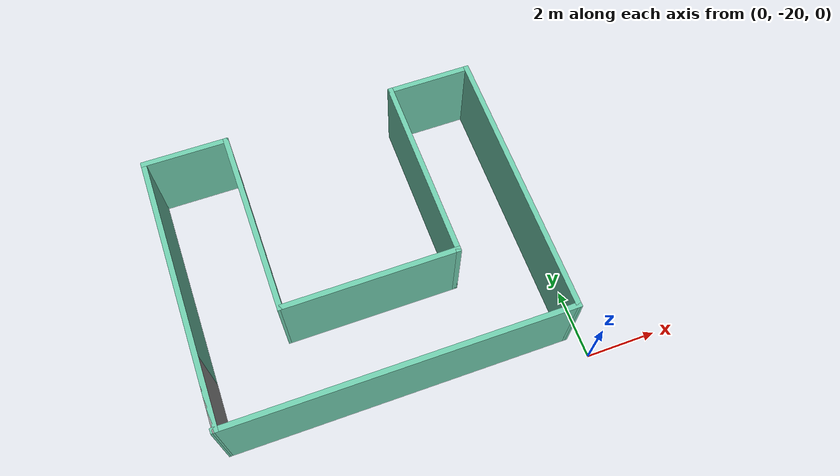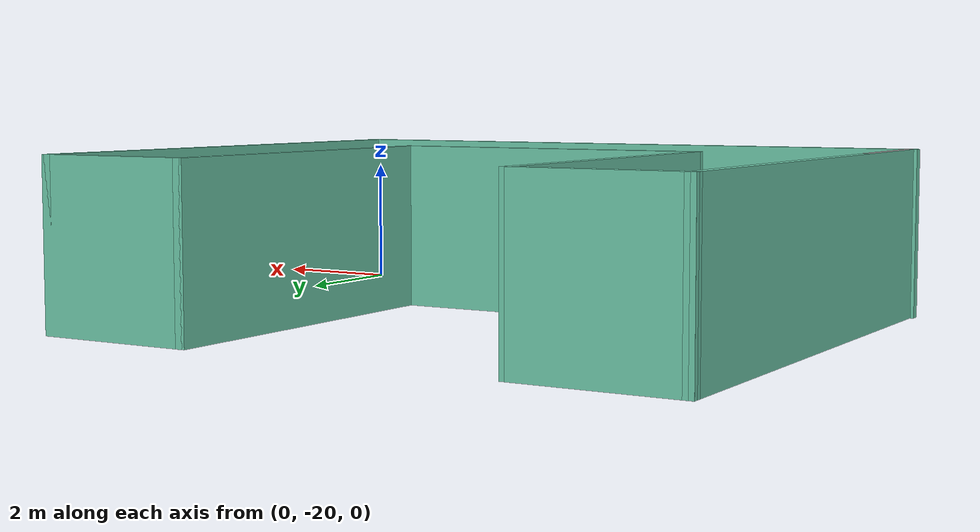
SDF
<?xml version='1.0'?>
<sdf version='1.6'>
  <model name='test'>
    <pose frame=''>-5.22 -15.355 0 0 -0 0</pose>
    <link name='Wall_46'>
      <collision name='Wall_46_Collision'>
        <geometry>
          <box>
            <size>2 0.15 2.5</size>
          </box>
        </geometry>
        <pose frame=''>0 0 1.25 0 -0 0</pose>
      </collision>
      <visual name='Wall_46_Visual'>
        <pose frame=''>0 0 1.25 0 -0 0</pose>
        <geometry>
          <box>
            <size>2 0.15 2.5</size>
          </box>
        </geometry>
        <material>
          <script>
            <uri>file://media/materials/scripts/gazebo.material</uri>
            <name>Gazebo/Grey</name>
          </script>
          <ambient>1 1 1 1</ambient>
        </material>
      </visual>
      <pose frame=''>-4.74 -2.98996 0 0 0 -1.5708</pose>
    </link>
    <link name='Wall_47'>
      <collision name='Wall_47_Collision'>
        <geometry>
          <box>
            <size>7.96001 0.15 2.5</size>
          </box>
        </geometry>
        <pose frame=''>0 0 1.25 0 -0 0</pose>
      </collision>
      <visual name='Wall_47_Visual'>
        <pose frame=''>0 0 1.25 0 -0 0</pose>
        <geometry>
          <box>
            <size>7.96001 0.15 2.5</size>
          </box>
        </geometry>
        <material>
          <script>
            <uri>file://media/materials/scripts/gazebo.material</uri>
            <name>Gazebo/Grey</name>
          </script>
          <ambient>0.435294 0.796078 0.67451 1</ambient>
        </material>
      </visual>
      <pose frame=''>-4.745 -0.009961 0 0 -0 1.57208</pose>
    </link>
    <link name='Wall_48'>
      <collision name='Wall_48_Collision'>
        <geometry>
          <box>
            <size>2.48002 0.15 2.5</size>
          </box>
        </geometry>
        <pose frame=''>0 0 1.25 0 -0 0</pose>
      </collision>
      <visual name='Wall_48_Visual'>
        <pose frame=''>0 0 1.25 0 -0 0</pose>
        <geometry>
          <box>
            <size>2.48002 0.15 2.5</size>
          </box>
        </geometry>
        <material>
          <script>
            <uri>file://media/materials/scripts/gazebo.material</uri>
            <name>Gazebo/Grey</name>
          </script>
          <ambient>0.435294 0.796078 0.67451 1</ambient>
        </material>
      </visual>
      <pose frame=''>-3.585 3.89004 0 0 0 -0.004292</pose>
    </link>
    <link name='Wall_49'>
      <collision name='Wall_49_Collision'>
        <geometry>
          <box>
            <size>5.46001 0.15 2.5</size>
          </box>
        </geometry>
        <pose frame=''>0 0 1.25 0 -0 0</pose>
      </collision>
      <visual name='Wall_49_Visual'>
        <pose frame=''>0 0 1.25 0 -0 0</pose>
        <geometry>
          <box>
            <size>5.46001 0.15 2.5</size>
          </box>
        </geometry>
        <material>
          <script>
            <uri>file://media/materials/scripts/gazebo.material</uri>
            <name>Gazebo/Grey</name>
          </script>
          <ambient>0.435294 0.796078 0.67451 1</ambient>
        </material>
      </visual>
      <pose frame=''>-2.415 1.23004 0 0 0 -1.56891</pose>
    </link>
    <link name='Wall_50'>
      <collision name='Wall_50_Collision'>
        <geometry>
          <box>
            <size>5.02001 0.15 2.5</size>
          </box>
        </geometry>
        <pose frame=''>0 0 1.25 0 -0 0</pose>
      </collision>
      <visual name='Wall_50_Visual'>
        <pose frame=''>0 0 1.25 0 -0 0</pose>
        <geometry>
          <box>
            <size>5.02001 0.15 2.5</size>
          </box>
        </geometry>
        <material>
          <script>
            <uri>file://media/materials/scripts/gazebo.material</uri>
            <name>Gazebo/Grey</name>
          </script>
          <ambient>0.435294 0.796078 0.67451 1</ambient>
        </material>
      </visual>
      <pose frame=''>0.025 -1.42496 0 0 -0 0</pose>
    </link>
    <link name='Wall_51'>
      <collision name='Wall_51_Collision'>
        <geometry>
          <box>
            <size>5.5 0.15 2.5</size>
          </box>
        </geometry>
        <pose frame=''>0 0 1.25 0 -0 0</pose>
      </collision>
      <visual name='Wall_51_Visual'>
        <pose frame=''>0 0 1.25 0 -0 0</pose>
        <geometry>
          <box>
            <size>5.5 0.15 2.5</size>
          </box>
        </geometry>
        <material>
          <script>
            <uri>file://media/materials/scripts/gazebo.material</uri>
            <name>Gazebo/Grey</name>
          </script>
          <ambient>0.435294 0.796078 0.67451 1</ambient>
        </material>
      </visual>
      <pose frame=''>2.46 1.25004 0 0 -0 1.5708</pose>
    </link>
    <link name='Wall_52'>
      <collision name='Wall_52_Collision'>
        <geometry>
          <box>
            <size>2.48 0.15 2.5</size>
          </box>
        </geometry>
        <pose frame=''>0 0 1.25 0 -0 0</pose>
      </collision>
      <visual name='Wall_52_Visual'>
        <pose frame=''>0 0 1.25 0 -0 0</pose>
        <geometry>
          <box>
            <size>2.48 0.15 2.5</size>
          </box>
        </geometry>
        <material>
          <script>
            <uri>file://media/materials/scripts/gazebo.material</uri>
            <name>Gazebo/Grey</name>
          </script>
          <ambient>0.435294 0.796078 0.67451 1</ambient>
        </material>
      </visual>
      <pose frame=''>3.625 3.92504 0 0 -0 0</pose>
    </link>
    <link name='Wall_53'>
      <collision name='Wall_53_Collision'>
        <geometry>
          <box>
            <size>8 0.15 2.5</size>
          </box>
        </geometry>
        <pose frame=''>0 0 1.25 0 -0 0</pose>
      </collision>
      <visual name='Wall_53_Visual'>
        <pose frame=''>0 0 1.25 0 -0 0</pose>
        <geometry>
          <box>
            <size>8 0.15 2.5</size>
          </box>
        </geometry>
        <material>
          <script>
            <uri>file://media/materials/scripts/gazebo.material</uri>
            <name>Gazebo/Grey</name>
          </script>
          <ambient>0.435294 0.796078 0.67451 1</ambient>
        </material>
      </visual>
      <pose frame=''>4.79 3.9e-05 0 0 0 -1.5708</pose>
    </link>
    <link name='Wall_54'>
      <collision name='Wall_54_Collision'>
        <geometry>
          <box>
            <size>9.73001 0.15 2.5</size>
          </box>
        </geometry>
        <pose frame=''>0 0 1.25 0 -0 0</pose>
      </collision>
      <visual name='Wall_54_Visual'>
        <pose frame=''>0 0 1.25 0 -0 0</pose>
        <geometry>
          <box>
            <size>9.73001 0.15 2.5</size>
          </box>
        </geometry>
        <material>
          <script>
            <uri>file://media/materials/scripts/gazebo.material</uri>
            <name>Gazebo/Grey</name>
          </script>
          <ambient>0.435294 0.796078 0.67451 1</ambient>
        </material>
      </visual>
      <pose frame=''>0 -3.91996 0 0 -0 3.14055</pose>
    </link>
    <static>1</static>
  </model>
</sdf>
